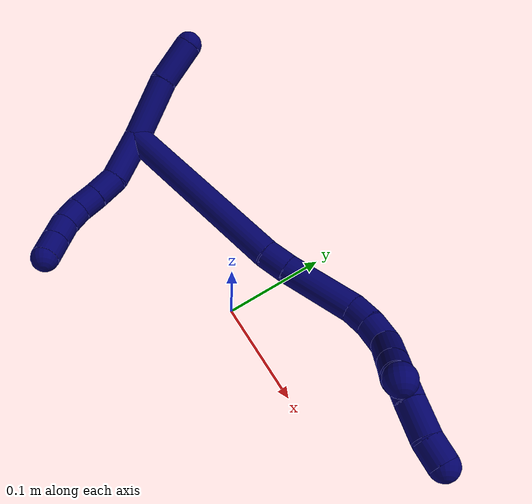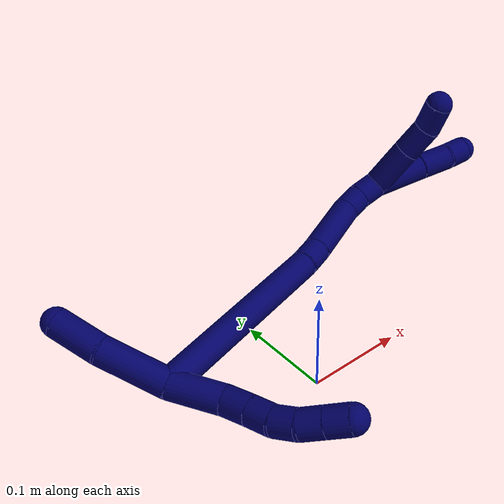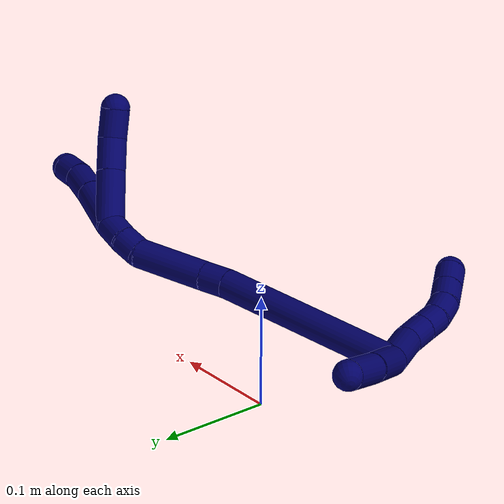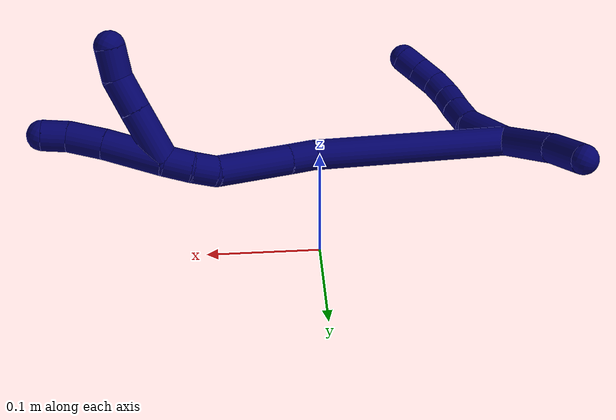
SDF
<sdf version="1.7">
 <world name="default">
  <model name="7">
   <static>0</static>
   <link name="7">
    <collision name="collision-cylinder-e_1_2_8">
     <pose>-0.009045 -0.007246 0.019609 0.353961 -0.408355 -0.074033</pose>
     <geometry><cylinder><radius>0.0125</radius><length>0.045555</length></cylinder></geometry>
     <surface>
      <friction><ode><mu>1.16</mu><mu2>1.16</mu2><slip1>0</slip1><slip2>0</slip2></ode></friction>
      <contact><ode><kp>1e+06</kp><kd>1</kd><max_vel>0</max_vel><min_depth>0.001</min_depth></ode></contact>
     </surface>
    </collision>
    <visual name="visual-cylinder-e_1_2_8">
     <pose>-0.009045 -0.007246 0.019609 0.353961 -0.408355 -0.074033</pose>
     <geometry><cylinder><radius>0.0125</radius><length>0.045555</length></cylinder></geometry>
     <material><ambient>0.003922 0 0.403922 1</ambient></material>
    </visual>
    <collision name="collision-cylinder-e_2_8_9">
     <pose>-0.0259 -0.016311 0.048146 0.201013 -0.708598 -0.074573</pose>
     <geometry><cylinder><radius>0.0125</radius><length>0.024003</length></cylinder></geometry>
     <surface>
      <friction><ode><mu>1.16</mu><mu2>1.16</mu2><slip1>0</slip1><slip2>0</slip2></ode></friction>
      <contact><ode><kp>1e+06</kp><kd>1</kd><max_vel>0</max_vel><min_depth>0.001</min_depth></ode></contact>
     </surface>
    </collision>
    <visual name="visual-cylinder-e_2_8_9">
     <pose>-0.0259 -0.016311 0.048146 0.201013 -0.708598 -0.074573</pose>
     <geometry><cylinder><radius>0.0125</radius><length>0.024003</length></cylinder></geometry>
     <material><ambient>0.003922 0 0.403922 1</ambient></material>
    </visual>
    <collision name="collision-cylinder-e_3_9_10">
     <pose>-0.040745 -0.019399 0.064366 0.172263 -0.76012 -0.068959</pose>
     <geometry><cylinder><radius>0.0125</radius><length>0.020421</length></cylinder></geometry>
     <surface>
      <friction><ode><mu>1.16</mu><mu2>1.16</mu2><slip1>0</slip1><slip2>0</slip2></ode></friction>
      <contact><ode><kp>1e+06</kp><kd>1</kd><max_vel>0</max_vel><min_depth>0.001</min_depth></ode></contact>
     </surface>
    </collision>
    <visual name="visual-cylinder-e_3_9_10">
     <pose>-0.040745 -0.019399 0.064366 0.172263 -0.76012 -0.068959</pose>
     <geometry><cylinder><radius>0.0125</radius><length>0.020421</length></cylinder></geometry>
     <material><ambient>0.003922 0 0.403922 1</ambient></material>
    </visual>
    <collision name="collision-cylinder-e_4_10_11">
     <pose>-0.05297 -0.020726 0.080213 0.006879 -0.545153 -0.001923</pose>
     <geometry><cylinder><radius>0.0125</radius><length>0.020016</length></cylinder></geometry>
     <surface>
      <friction><ode><mu>1.16</mu><mu2>1.16</mu2><slip1>0</slip1><slip2>0</slip2></ode></friction>
      <contact><ode><kp>1e+06</kp><kd>1</kd><max_vel>0</max_vel><min_depth>0.001</min_depth></ode></contact>
     </surface>
    </collision>
    <visual name="visual-cylinder-e_4_10_11">
     <pose>-0.05297 -0.020726 0.080213 0.006879 -0.545153 -0.001923</pose>
     <geometry><cylinder><radius>0.0125</radius><length>0.020016</length></cylinder></geometry>
     <material><ambient>0.003922 0 0.403922 1</ambient></material>
    </visual>
    <collision name="collision-cylinder-e_5_11_12">
     <pose>-0.061169 -0.020085 0.098283 -0.073511 -0.305586 0.011325</pose>
     <geometry><cylinder><radius>0.0125</radius><length>0.020004</length></cylinder></geometry>
     <surface>
      <friction><ode><mu>1.16</mu><mu2>1.16</mu2><slip1>0</slip1><slip2>0</slip2></ode></friction>
      <contact><ode><kp>1e+06</kp><kd>1</kd><max_vel>0</max_vel><min_depth>0.001</min_depth></ode></contact>
     </surface>
    </collision>
    <visual name="visual-cylinder-e_5_11_12">
     <pose>-0.061169 -0.020085 0.098283 -0.073511 -0.305586 0.011325</pose>
     <geometry><cylinder><radius>0.0125</radius><length>0.020004</length></cylinder></geometry>
     <material><ambient>0.003922 0 0.403922 1</ambient></material>
    </visual>
    <collision name="collision-cylinder-e_6_12_6">
     <pose>-0.067157 -0.018702 0.117318 -0.071543 -0.302479 0.010908</pose>
     <geometry><cylinder><radius>0.0125</radius><length>0.020001</length></cylinder></geometry>
     <surface>
      <friction><ode><mu>1.16</mu><mu2>1.16</mu2><slip1>0</slip1><slip2>0</slip2></ode></friction>
      <contact><ode><kp>1e+06</kp><kd>1</kd><max_vel>0</max_vel><min_depth>0.001</min_depth></ode></contact>
     </surface>
    </collision>
    <visual name="visual-cylinder-e_6_12_6">
     <pose>-0.067157 -0.018702 0.117318 -0.071543 -0.302479 0.010908</pose>
     <geometry><cylinder><radius>0.0125</radius><length>0.020001</length></cylinder></geometry>
     <material><ambient>0.003922 0 0.403922 1</ambient></material>
    </visual>
    <collision name="collision-cylinder-e_1_2_13">
     <pose>0.010704 0.015794 -0.022112 -2.52136 0.375253 -1.06973</pose>
     <geometry><cylinder><radius>0.0125</radius><length>0.058412</length></cylinder></geometry>
     <surface>
      <friction><ode><mu>1.16</mu><mu2>1.16</mu2><slip1>0</slip1><slip2>0</slip2></ode></friction>
      <contact><ode><kp>1e+06</kp><kd>1</kd><max_vel>0</max_vel><min_depth>0.001</min_depth></ode></contact>
     </surface>
    </collision>
    <visual name="visual-cylinder-e_1_2_13">
     <pose>0.010704 0.015794 -0.022112 -2.52136 0.375253 -1.06973</pose>
     <geometry><cylinder><radius>0.0125</radius><length>0.058412</length></cylinder></geometry>
     <material><ambient>0.003922 0 0.403922 1</ambient></material>
    </visual>
    <collision name="collision-cylinder-e_2_13_5">
     <pose>0.032184 0.041908 -0.058708 -2.52251 0.544765 -1.43581</pose>
     <geometry><cylinder><radius>0.0125</radius><length>0.041588</length></cylinder></geometry>
     <surface>
      <friction><ode><mu>1.16</mu><mu2>1.16</mu2><slip1>0</slip1><slip2>0</slip2></ode></friction>
      <contact><ode><kp>1e+06</kp><kd>1</kd><max_vel>0</max_vel><min_depth>0.001</min_depth></ode></contact>
     </surface>
    </collision>
    <visual name="visual-cylinder-e_2_13_5">
     <pose>0.032184 0.041908 -0.058708 -2.52251 0.544765 -1.43581</pose>
     <geometry><cylinder><radius>0.0125</radius><length>0.041588</length></cylinder></geometry>
     <material><ambient>0.003922 0 0.403922 1</ambient></material>
    </visual>
    <collision name="collision-cylinder-e_1_2_14">
     <pose>0.057772 0.000942 0.063112 -0.014921 0.741196 -0.005798</pose>
     <geometry><cylinder><radius>0.0125</radius><length>0.171133</length></cylinder></geometry>
     <surface>
      <friction><ode><mu>1.16</mu><mu2>1.16</mu2><slip1>0</slip1><slip2>0</slip2></ode></friction>
      <contact><ode><kp>1e+06</kp><kd>1</kd><max_vel>0</max_vel><min_depth>0.001</min_depth></ode></contact>
     </surface>
    </collision>
    <visual name="visual-cylinder-e_1_2_14">
     <pose>0.057772 0.000942 0.063112 -0.014921 0.741196 -0.005798</pose>
     <geometry><cylinder><radius>0.0125</radius><length>0.171133</length></cylinder></geometry>
     <material><ambient>0.003922 0 0.403922 1</ambient></material>
    </visual>
    <collision name="collision-cylinder-e_2_14_15">
     <pose>0.124183 0.001982 0.133443 -0.013592 0.87464 -0.006355</pose>
     <geometry><cylinder><radius>0.0125</radius><length>0.022516</length></cylinder></geometry>
     <surface>
      <friction><ode><mu>1.16</mu><mu2>1.16</mu2><slip1>0</slip1><slip2>0</slip2></ode></friction>
      <contact><ode><kp>1e+06</kp><kd>1</kd><max_vel>0</max_vel><min_depth>0.001</min_depth></ode></contact>
     </surface>
    </collision>
    <visual name="visual-cylinder-e_2_14_15">
     <pose>0.124183 0.001982 0.133443 -0.013592 0.87464 -0.006355</pose>
     <geometry><cylinder><radius>0.0125</radius><length>0.022516</length></cylinder></geometry>
     <material><ambient>0.003922 0 0.403922 1</ambient></material>
    </visual>
    <collision name="collision-cylinder-e_3_15_16">
     <pose>0.15806 0.00424 0.159978 -0.111351 0.914567 -0.054835</pose>
     <geometry><cylinder><radius>0.0125</radius><length>0.063712</length></cylinder></geometry>
     <surface>
      <friction><ode><mu>1.16</mu><mu2>1.16</mu2><slip1>0</slip1><slip2>0</slip2></ode></friction>
      <contact><ode><kp>1e+06</kp><kd>1</kd><max_vel>0</max_vel><min_depth>0.001</min_depth></ode></contact>
     </surface>
    </collision>
    <visual name="visual-cylinder-e_3_15_16">
     <pose>0.15806 0.00424 0.159978 -0.111351 0.914567 -0.054835</pose>
     <geometry><cylinder><radius>0.0125</radius><length>0.063712</length></cylinder></geometry>
     <material><ambient>0.003922 0 0.403922 1</ambient></material>
    </visual>
    <collision name="collision-cylinder-e_4_16_17">
     <pose>0.188887 0.008515 0.187428 -0.254467 0.586707 -0.077246</pose>
     <geometry><cylinder><radius>0.0125</radius><length>0.020184</length></cylinder></geometry>
     <surface>
      <friction><ode><mu>1.16</mu><mu2>1.16</mu2><slip1>0</slip1><slip2>0</slip2></ode></friction>
      <contact><ode><kp>1e+06</kp><kd>1</kd><max_vel>0</max_vel><min_depth>0.001</min_depth></ode></contact>
     </surface>
    </collision>
    <visual name="visual-cylinder-e_4_16_17">
     <pose>0.188887 0.008515 0.187428 -0.254467 0.586707 -0.077246</pose>
     <geometry><cylinder><radius>0.0125</radius><length>0.020184</length></cylinder></geometry>
     <material><ambient>0.003922 0 0.403922 1</ambient></material>
    </visual>
    <collision name="collision-cylinder-e_5_17_1">
     <pose>0.19925 0.012298 0.205585 -0.164836 0.439366 -0.036885</pose>
     <geometry><cylinder><radius>0.0125</radius><length>0.022455</length></cylinder></geometry>
     <surface>
      <friction><ode><mu>1.16</mu><mu2>1.16</mu2><slip1>0</slip1><slip2>0</slip2></ode></friction>
      <contact><ode><kp>1e+06</kp><kd>1</kd><max_vel>0</max_vel><min_depth>0.001</min_depth></ode></contact>
     </surface>
    </collision>
    <visual name="visual-cylinder-e_5_17_1">
     <pose>0.19925 0.012298 0.205585 -0.164836 0.439366 -0.036885</pose>
     <geometry><cylinder><radius>0.0125</radius><length>0.022455</length></cylinder></geometry>
     <material><ambient>0.003922 0 0.403922 1</ambient></material>
    </visual>
    <collision name="collision-cylinder-e_1_1_18">
     <pose>0.200471 0.029104 0.232047 -0.744237 -0.157762 0.061683</pose>
     <geometry><cylinder><radius>0.0125</radius><length>0.045257</length></cylinder></geometry>
     <surface>
      <friction><ode><mu>1.16</mu><mu2>1.16</mu2><slip1>0</slip1><slip2>0</slip2></ode></friction>
      <contact><ode><kp>1e+06</kp><kd>1</kd><max_vel>0</max_vel><min_depth>0.001</min_depth></ode></contact>
     </surface>
    </collision>
    <visual name="visual-cylinder-e_1_1_18">
     <pose>0.200471 0.029104 0.232047 -0.744237 -0.157762 0.061683</pose>
     <geometry><cylinder><radius>0.0125</radius><length>0.045257</length></cylinder></geometry>
     <material><ambient>0.003922 0 0.403922 1</ambient></material>
    </visual>
    <collision name="collision-cylinder-e_2_18_19">
     <pose>0.194387 0.053885 0.258984 -0.74297 -0.175559 0.068542</pose>
     <geometry><cylinder><radius>0.0125</radius><length>0.028955</length></cylinder></geometry>
     <surface>
      <friction><ode><mu>1.16</mu><mu2>1.16</mu2><slip1>0</slip1><slip2>0</slip2></ode></friction>
      <contact><ode><kp>1e+06</kp><kd>1</kd><max_vel>0</max_vel><min_depth>0.001</min_depth></ode></contact>
     </surface>
    </collision>
    <visual name="visual-cylinder-e_2_18_19">
     <pose>0.194387 0.053885 0.258984 -0.74297 -0.175559 0.068542</pose>
     <geometry><cylinder><radius>0.0125</radius><length>0.028955</length></cylinder></geometry>
     <material><ambient>0.003922 0 0.403922 1</ambient></material>
    </visual>
    <collision name="collision-cylinder-e_3_19_4">
     <pose>0.188791 0.074475 0.275567 -1.06343 -0.240169 0.141718</pose>
     <geometry><cylinder><radius>0.0125</radius><length>0.025788</length></cylinder></geometry>
     <surface>
      <friction><ode><mu>1.16</mu><mu2>1.16</mu2><slip1>0</slip1><slip2>0</slip2></ode></friction>
      <contact><ode><kp>1e+06</kp><kd>1</kd><max_vel>0</max_vel><min_depth>0.001</min_depth></ode></contact>
     </surface>
    </collision>
    <visual name="visual-cylinder-e_3_19_4">
     <pose>0.188791 0.074475 0.275567 -1.06343 -0.240169 0.141718</pose>
     <geometry><cylinder><radius>0.0125</radius><length>0.025788</length></cylinder></geometry>
     <material><ambient>0.003922 0 0.403922 1</ambient></material>
    </visual>
    <collision name="collision-cylinder-e_1_1_20">
     <pose>0.209865 0.01412 0.239459 -0.006501 0.240081 -0.000784</pose>
     <geometry><cylinder><radius>0.0125</radius><length>0.049112</length></cylinder></geometry>
     <surface>
      <friction><ode><mu>1.16</mu><mu2>1.16</mu2><slip1>0</slip1><slip2>0</slip2></ode></friction>
      <contact><ode><kp>1e+06</kp><kd>1</kd><max_vel>0</max_vel><min_depth>0.001</min_depth></ode></contact>
     </surface>
    </collision>
    <visual name="visual-cylinder-e_1_1_20">
     <pose>0.209865 0.01412 0.239459 -0.006501 0.240081 -0.000784</pose>
     <geometry><cylinder><radius>0.0125</radius><length>0.049112</length></cylinder></geometry>
     <material><ambient>0.003922 0 0.403922 1</ambient></material>
    </visual>
    <collision name="collision-cylinder-e_2_20_21">
     <pose>0.219928 0.013779 0.277702 0.034452 0.285325 0.004949</pose>
     <geometry><cylinder><radius>0.0125</radius><length>0.030015</length></cylinder></geometry>
     <surface>
      <friction><ode><mu>1.16</mu><mu2>1.16</mu2><slip1>0</slip1><slip2>0</slip2></ode></friction>
      <contact><ode><kp>1e+06</kp><kd>1</kd><max_vel>0</max_vel><min_depth>0.001</min_depth></ode></contact>
     </surface>
    </collision>
    <visual name="visual-cylinder-e_2_20_21">
     <pose>0.219928 0.013779 0.277702 0.034452 0.285325 0.004949</pose>
     <geometry><cylinder><radius>0.0125</radius><length>0.030015</length></cylinder></geometry>
     <material><ambient>0.003922 0 0.403922 1</ambient></material>
    </visual>
    <collision name="collision-cylinder-e_3_21_3">
     <pose>0.228975 0.012482 0.301315 0.08666 0.480411 0.021238</pose>
     <geometry><cylinder><radius>0.0125</radius><length>0.020873</length></cylinder></geometry>
     <surface>
      <friction><ode><mu>1.16</mu><mu2>1.16</mu2><slip1>0</slip1><slip2>0</slip2></ode></friction>
      <contact><ode><kp>1e+06</kp><kd>1</kd><max_vel>0</max_vel><min_depth>0.001</min_depth></ode></contact>
     </surface>
    </collision>
    <visual name="visual-cylinder-e_3_21_3">
     <pose>0.228975 0.012482 0.301315 0.08666 0.480411 0.021238</pose>
     <geometry><cylinder><radius>0.0125</radius><length>0.020873</length></cylinder></geometry>
     <material><ambient>0.003922 0 0.403922 1</ambient></material>
    </visual>
    <collision name="collision-sphere-3">
     <pose>0.233798 0.011681 0.310535 0 -0 0</pose>
     <geometry><sphere><radius>0.0125</radius></sphere></geometry>
     <surface>
      <friction><ode><mu>1.16</mu><mu2>1.16</mu2><slip1>0</slip1><slip2>0</slip2></ode></friction>
      <contact><ode><kp>1e+06</kp><kd>1</kd><max_vel>0</max_vel><min_depth>0.001</min_depth></ode></contact>
     </surface>
    </collision>
    <visual name="visual-sphere-3">
     <pose>0.233798 0.011681 0.310535 0 -0 0</pose>
     <geometry><sphere><radius>0.0125</radius></sphere></geometry>
     <material><ambient>0.003922 0 0.403922 1</ambient></material>
    </visual>
    <collision name="collision-sphere-21">
     <pose>0.224152 0.013283 0.292095 0 -0 0</pose>
     <geometry><sphere><radius>0.0125</radius></sphere></geometry>
     <surface>
      <friction><ode><mu>1.16</mu><mu2>1.16</mu2><slip1>0</slip1><slip2>0</slip2></ode></friction>
      <contact><ode><kp>1e+06</kp><kd>1</kd><max_vel>0</max_vel><min_depth>0.001</min_depth></ode></contact>
     </surface>
    </collision>
    <visual name="visual-sphere-21">
     <pose>0.224152 0.013283 0.292095 0 -0 0</pose>
     <geometry><sphere><radius>0.0125</radius></sphere></geometry>
     <material><ambient>0.003922 0 0.403922 1</ambient></material>
    </visual>
    <collision name="collision-sphere-20">
     <pose>0.215704 0.014275 0.26331 0 -0 0</pose>
     <geometry><sphere><radius>0.0125</radius></sphere></geometry>
     <surface>
      <friction><ode><mu>1.16</mu><mu2>1.16</mu2><slip1>0</slip1><slip2>0</slip2></ode></friction>
      <contact><ode><kp>1e+06</kp><kd>1</kd><max_vel>0</max_vel><min_depth>0.001</min_depth></ode></contact>
     </surface>
    </collision>
    <visual name="visual-sphere-20">
     <pose>0.215704 0.014275 0.26331 0 -0 0</pose>
     <geometry><sphere><radius>0.0125</radius></sphere></geometry>
     <material><ambient>0.003922 0 0.403922 1</ambient></material>
    </visual>
    <collision name="collision-sphere-4">
     <pose>0.185724 0.085421 0.281652 0 -0 0</pose>
     <geometry><sphere><radius>0.0125</radius></sphere></geometry>
     <surface>
      <friction><ode><mu>1.16</mu><mu2>1.16</mu2><slip1>0</slip1><slip2>0</slip2></ode></friction>
      <contact><ode><kp>1e+06</kp><kd>1</kd><max_vel>0</max_vel><min_depth>0.001</min_depth></ode></contact>
     </surface>
    </collision>
    <visual name="visual-sphere-4">
     <pose>0.185724 0.085421 0.281652 0 -0 0</pose>
     <geometry><sphere><radius>0.0125</radius></sphere></geometry>
     <material><ambient>0.003922 0 0.403922 1</ambient></material>
    </visual>
    <collision name="collision-sphere-12">
     <pose>-0.064178 -0.019384 0.107796 0 -0 0</pose>
     <geometry><sphere><radius>0.0125</radius></sphere></geometry>
     <surface>
      <friction><ode><mu>1.16</mu><mu2>1.16</mu2><slip1>0</slip1><slip2>0</slip2></ode></friction>
      <contact><ode><kp>1e+06</kp><kd>1</kd><max_vel>0</max_vel><min_depth>0.001</min_depth></ode></contact>
     </surface>
    </collision>
    <visual name="visual-sphere-12">
     <pose>-0.064178 -0.019384 0.107796 0 -0 0</pose>
     <geometry><sphere><radius>0.0125</radius></sphere></geometry>
     <material><ambient>0.003922 0 0.403922 1</ambient></material>
    </visual>
    <collision name="collision-sphere-11">
     <pose>-0.05816 -0.020785 0.08877 0 -0 0</pose>
     <geometry><sphere><radius>0.0125</radius></sphere></geometry>
     <surface>
      <friction><ode><mu>1.16</mu><mu2>1.16</mu2><slip1>0</slip1><slip2>0</slip2></ode></friction>
      <contact><ode><kp>1e+06</kp><kd>1</kd><max_vel>0</max_vel><min_depth>0.001</min_depth></ode></contact>
     </surface>
    </collision>
    <visual name="visual-sphere-11">
     <pose>-0.05816 -0.020785 0.08877 0 -0 0</pose>
     <geometry><sphere><radius>0.0125</radius></sphere></geometry>
     <material><ambient>0.003922 0 0.403922 1</ambient></material>
    </visual>
    <collision name="collision-sphere-10">
     <pose>-0.04778 -0.020667 0.071656 0 -0 0</pose>
     <geometry><sphere><radius>0.0125</radius></sphere></geometry>
     <surface>
      <friction><ode><mu>1.16</mu><mu2>1.16</mu2><slip1>0</slip1><slip2>0</slip2></ode></friction>
      <contact><ode><kp>1e+06</kp><kd>1</kd><max_vel>0</max_vel><min_depth>0.001</min_depth></ode></contact>
     </surface>
    </collision>
    <visual name="visual-sphere-10">
     <pose>-0.04778 -0.020667 0.071656 0 -0 0</pose>
     <geometry><sphere><radius>0.0125</radius></sphere></geometry>
     <material><ambient>0.003922 0 0.403922 1</ambient></material>
    </visual>
    <collision name="collision-sphere-9">
     <pose>-0.03371 -0.01813 0.057075 0 -0 0</pose>
     <geometry><sphere><radius>0.0125</radius></sphere></geometry>
     <surface>
      <friction><ode><mu>1.16</mu><mu2>1.16</mu2><slip1>0</slip1><slip2>0</slip2></ode></friction>
      <contact><ode><kp>1e+06</kp><kd>1</kd><max_vel>0</max_vel><min_depth>0.001</min_depth></ode></contact>
     </surface>
    </collision>
    <visual name="visual-sphere-9">
     <pose>-0.03371 -0.01813 0.057075 0 -0 0</pose>
     <geometry><sphere><radius>0.0125</radius></sphere></geometry>
     <material><ambient>0.003922 0 0.403922 1</ambient></material>
    </visual>
    <collision name="collision-sphere-2">
     <geometry><sphere><radius>0.0125</radius></sphere></geometry>
     <surface>
      <friction><ode><mu>1.16</mu><mu2>1.16</mu2><slip1>0</slip1><slip2>0</slip2></ode></friction>
      <contact><ode><kp>1e+06</kp><kd>1</kd><max_vel>0</max_vel><min_depth>0.001</min_depth></ode></contact>
     </surface>
    </collision>
    <visual name="visual-sphere-2">
     <geometry><sphere><radius>0.0125</radius></sphere></geometry>
     <material><ambient>0.003922 0 0.403922 1</ambient></material>
    </visual>
    <collision name="collision-sphere-19">
     <pose>0.191858 0.063528 0.269482 0 -0 0</pose>
     <geometry><sphere><radius>0.0125</radius></sphere></geometry>
     <surface>
      <friction><ode><mu>1.16</mu><mu2>1.16</mu2><slip1>0</slip1><slip2>0</slip2></ode></friction>
      <contact><ode><kp>1e+06</kp><kd>1</kd><max_vel>0</max_vel><min_depth>0.001</min_depth></ode></contact>
     </surface>
    </collision>
    <visual name="visual-sphere-19">
     <pose>0.191858 0.063528 0.269482 0 -0 0</pose>
     <geometry><sphere><radius>0.0125</radius></sphere></geometry>
     <material><ambient>0.003922 0 0.403922 1</ambient></material>
    </visual>
    <collision name="collision-sphere-8">
     <pose>-0.01809 -0.014492 0.039217 0 -0 0</pose>
     <geometry><sphere><radius>0.0125</radius></sphere></geometry>
     <surface>
      <friction><ode><mu>1.16</mu><mu2>1.16</mu2><slip1>0</slip1><slip2>0</slip2></ode></friction>
      <contact><ode><kp>1e+06</kp><kd>1</kd><max_vel>0</max_vel><min_depth>0.001</min_depth></ode></contact>
     </surface>
    </collision>
    <visual name="visual-sphere-8">
     <pose>-0.01809 -0.014492 0.039217 0 -0 0</pose>
     <geometry><sphere><radius>0.0125</radius></sphere></geometry>
     <material><ambient>0.003922 0 0.403922 1</ambient></material>
    </visual>
    <collision name="collision-sphere-6">
     <pose>-0.070136 -0.018019 0.126841 0 -0 0</pose>
     <geometry><sphere><radius>0.0125</radius></sphere></geometry>
     <surface>
      <friction><ode><mu>1.16</mu><mu2>1.16</mu2><slip1>0</slip1><slip2>0</slip2></ode></friction>
      <contact><ode><kp>1e+06</kp><kd>1</kd><max_vel>0</max_vel><min_depth>0.001</min_depth></ode></contact>
     </surface>
    </collision>
    <visual name="visual-sphere-6">
     <pose>-0.070136 -0.018019 0.126841 0 -0 0</pose>
     <geometry><sphere><radius>0.0125</radius></sphere></geometry>
     <material><ambient>0.003922 0 0.403922 1</ambient></material>
    </visual>
    <collision name="collision-sphere-13">
     <pose>0.021408 0.031588 -0.044225 0 -0 0</pose>
     <geometry><sphere><radius>0.0125</radius></sphere></geometry>
     <surface>
      <friction><ode><mu>1.16</mu><mu2>1.16</mu2><slip1>0</slip1><slip2>0</slip2></ode></friction>
      <contact><ode><kp>1e+06</kp><kd>1</kd><max_vel>0</max_vel><min_depth>0.001</min_depth></ode></contact>
     </surface>
    </collision>
    <visual name="visual-sphere-13">
     <pose>0.021408 0.031588 -0.044225 0 -0 0</pose>
     <geometry><sphere><radius>0.0125</radius></sphere></geometry>
     <material><ambient>0.003922 0 0.403922 1</ambient></material>
    </visual>
    <collision name="collision-sphere-5">
     <pose>0.04296 0.052228 -0.073192 0 -0 0</pose>
     <geometry><sphere><radius>0.0125</radius></sphere></geometry>
     <surface>
      <friction><ode><mu>1.16</mu><mu2>1.16</mu2><slip1>0</slip1><slip2>0</slip2></ode></friction>
      <contact><ode><kp>1e+06</kp><kd>1</kd><max_vel>0</max_vel><min_depth>0.001</min_depth></ode></contact>
     </surface>
    </collision>
    <visual name="visual-sphere-5">
     <pose>0.04296 0.052228 -0.073192 0 -0 0</pose>
     <geometry><sphere><radius>0.0125</radius></sphere></geometry>
     <material><ambient>0.003922 0 0.403922 1</ambient></material>
    </visual>
    <collision name="collision-sphere-14">
     <pose>0.115544 0.001884 0.126224 0 -0 0</pose>
     <geometry><sphere><radius>0.0125</radius></sphere></geometry>
     <surface>
      <friction><ode><mu>1.16</mu><mu2>1.16</mu2><slip1>0</slip1><slip2>0</slip2></ode></friction>
      <contact><ode><kp>1e+06</kp><kd>1</kd><max_vel>0</max_vel><min_depth>0.001</min_depth></ode></contact>
     </surface>
    </collision>
    <visual name="visual-sphere-14">
     <pose>0.115544 0.001884 0.126224 0 -0 0</pose>
     <geometry><sphere><radius>0.0125</radius></sphere></geometry>
     <material><ambient>0.003922 0 0.403922 1</ambient></material>
    </visual>
    <collision name="collision-sphere-15">
     <pose>0.132821 0.00208 0.140662 0 -0 0</pose>
     <geometry><sphere><radius>0.0125</radius></sphere></geometry>
     <surface>
      <friction><ode><mu>1.16</mu><mu2>1.16</mu2><slip1>0</slip1><slip2>0</slip2></ode></friction>
      <contact><ode><kp>1e+06</kp><kd>1</kd><max_vel>0</max_vel><min_depth>0.001</min_depth></ode></contact>
     </surface>
    </collision>
    <visual name="visual-sphere-15">
     <pose>0.132821 0.00208 0.140662 0 -0 0</pose>
     <geometry><sphere><radius>0.0125</radius></sphere></geometry>
     <material><ambient>0.003922 0 0.403922 1</ambient></material>
    </visual>
    <collision name="collision-sphere-16">
     <pose>0.1833 0.006399 0.179294 0 -0 0</pose>
     <geometry><sphere><radius>0.0125</radius></sphere></geometry>
     <surface>
      <friction><ode><mu>1.16</mu><mu2>1.16</mu2><slip1>0</slip1><slip2>0</slip2></ode></friction>
      <contact><ode><kp>1e+06</kp><kd>1</kd><max_vel>0</max_vel><min_depth>0.001</min_depth></ode></contact>
     </surface>
    </collision>
    <visual name="visual-sphere-16">
     <pose>0.1833 0.006399 0.179294 0 -0 0</pose>
     <geometry><sphere><radius>0.0125</radius></sphere></geometry>
     <material><ambient>0.003922 0 0.403922 1</ambient></material>
    </visual>
    <collision name="collision-sphere-17">
     <pose>0.194474 0.010631 0.195561 0 -0 0</pose>
     <geometry><sphere><radius>0.0125</radius></sphere></geometry>
     <surface>
      <friction><ode><mu>1.16</mu><mu2>1.16</mu2><slip1>0</slip1><slip2>0</slip2></ode></friction>
      <contact><ode><kp>1e+06</kp><kd>1</kd><max_vel>0</max_vel><min_depth>0.001</min_depth></ode></contact>
     </surface>
    </collision>
    <visual name="visual-sphere-17">
     <pose>0.194474 0.010631 0.195561 0 -0 0</pose>
     <geometry><sphere><radius>0.0125</radius></sphere></geometry>
     <material><ambient>0.003922 0 0.403922 1</ambient></material>
    </visual>
    <collision name="collision-sphere-1">
     <pose>0.204026 0.013965 0.215608 0 -0 0</pose>
     <geometry><sphere><radius>0.0125</radius></sphere></geometry>
     <surface>
      <friction><ode><mu>1.16</mu><mu2>1.16</mu2><slip1>0</slip1><slip2>0</slip2></ode></friction>
      <contact><ode><kp>1e+06</kp><kd>1</kd><max_vel>0</max_vel><min_depth>0.001</min_depth></ode></contact>
     </surface>
    </collision>
    <visual name="visual-sphere-1">
     <pose>0.204026 0.013965 0.215608 0 -0 0</pose>
     <geometry><sphere><radius>0.0125</radius></sphere></geometry>
     <material><ambient>0.003922 0 0.403922 1</ambient></material>
    </visual>
    <collision name="collision-sphere-18">
     <pose>0.196915 0.044242 0.248486 0 -0 0</pose>
     <geometry><sphere><radius>0.0125</radius></sphere></geometry>
     <surface>
      <friction><ode><mu>1.16</mu><mu2>1.16</mu2><slip1>0</slip1><slip2>0</slip2></ode></friction>
      <contact><ode><kp>1e+06</kp><kd>1</kd><max_vel>0</max_vel><min_depth>0.001</min_depth></ode></contact>
     </surface>
    </collision>
    <visual name="visual-sphere-18">
     <pose>0.196915 0.044242 0.248486 0 -0 0</pose>
     <geometry><sphere><radius>0.0125</radius></sphere></geometry>
     <material><ambient>0.003922 0 0.403922 1</ambient></material>
    </visual>
    <inertial>
     <pose>0.09169 0.009929 0.11925 0 -0 0</pose>
     <mass>0.75</mass>
     <inertia>
      <ixx>0.000378</ixx>
      <ixy>0</ixy>
      <ixz>0</ixz>
      <iyy>0.00048</iyy>
      <iyz>0</iyz>
      <izz>-0.000308</izz>
     </inertia>
    </inertial>
   </link>
   <pose>-0.159309 -0.005157 0.103714 1.37039 0.102629 1.01199</pose>
  </model>
 </world>
</sdf>
